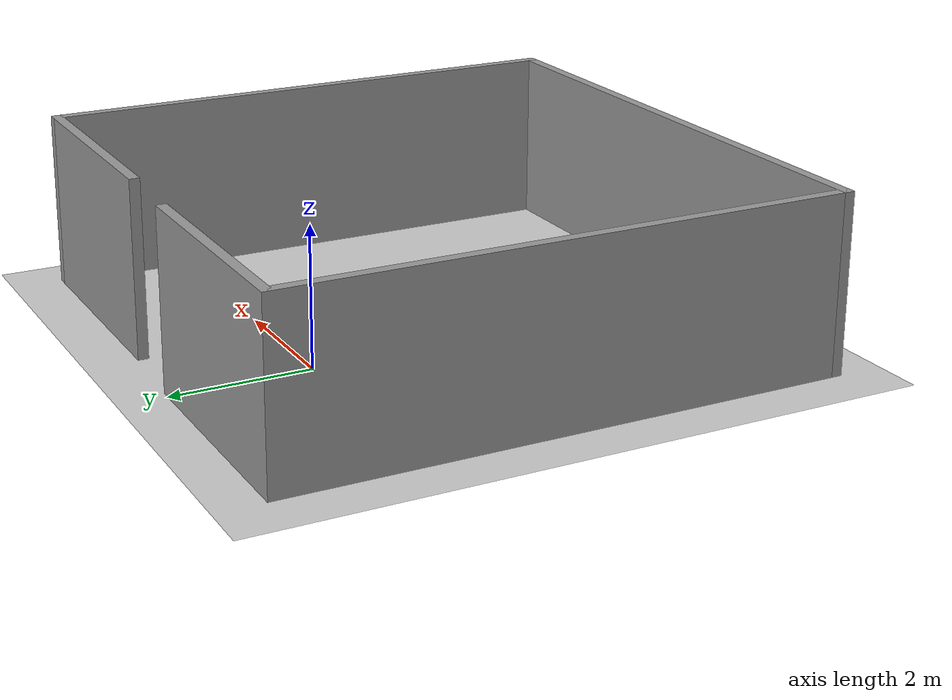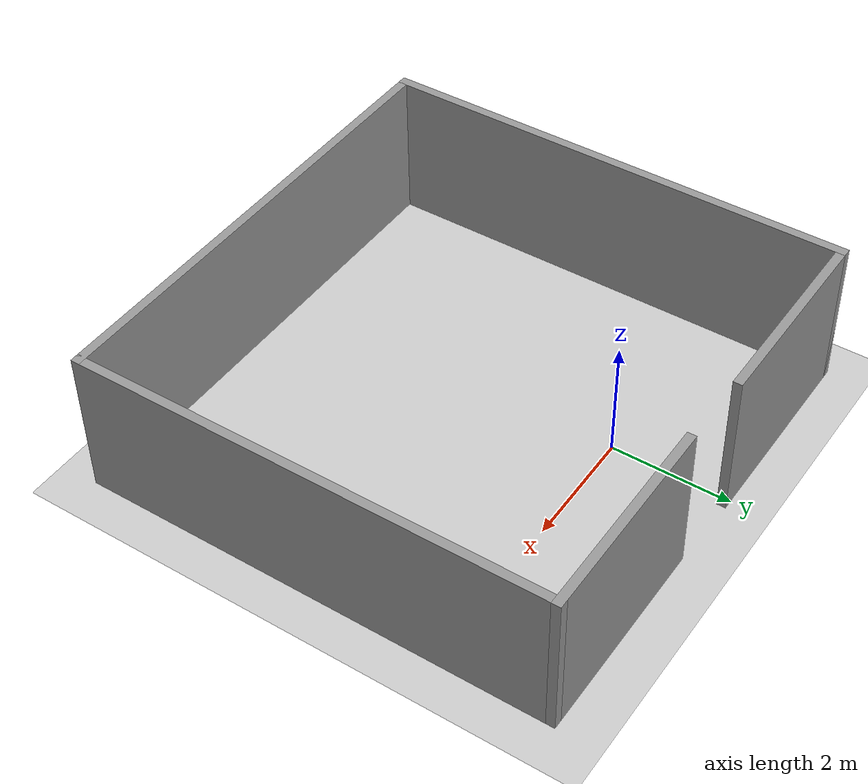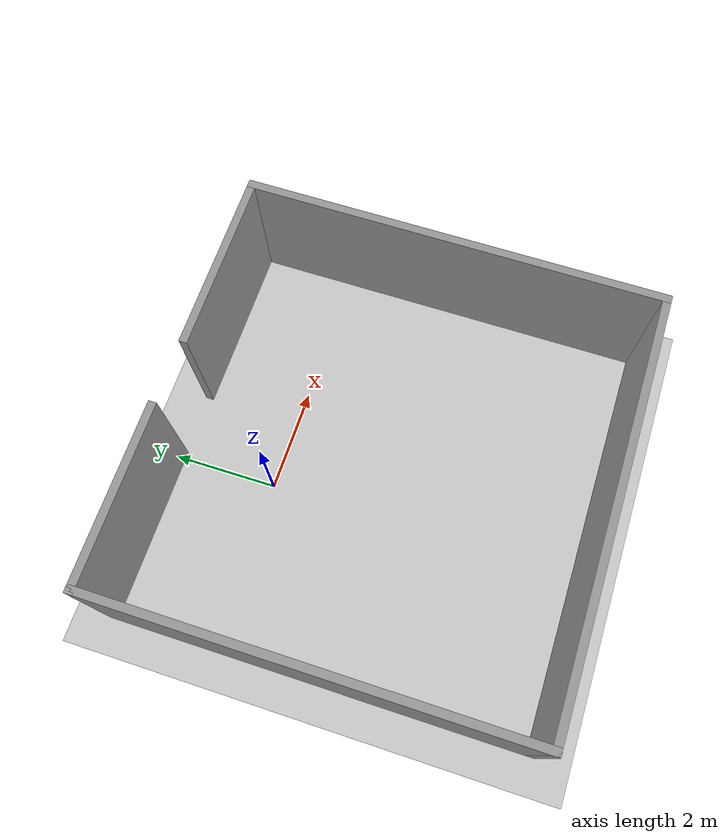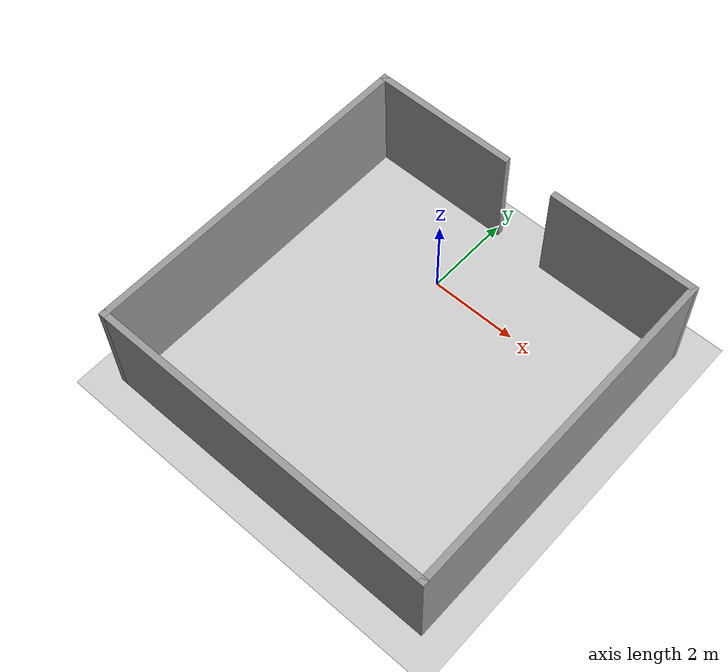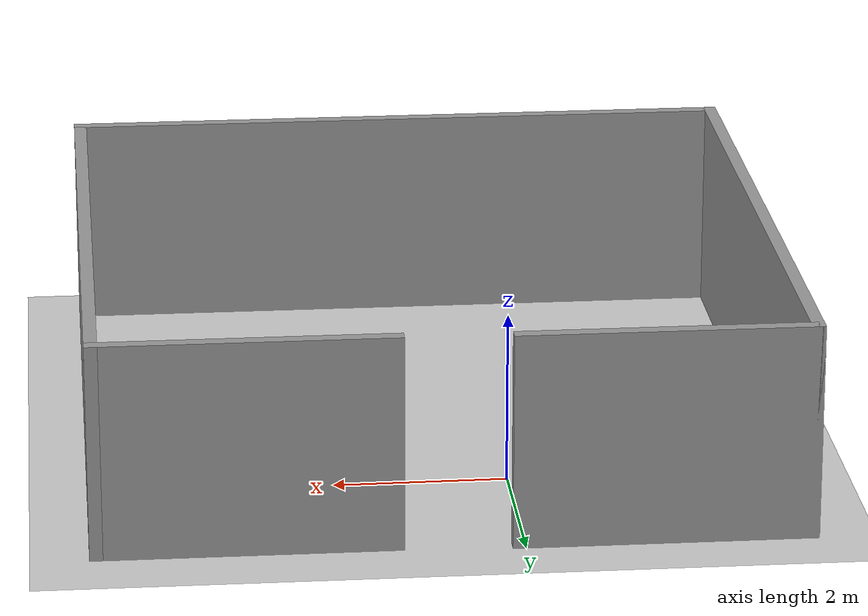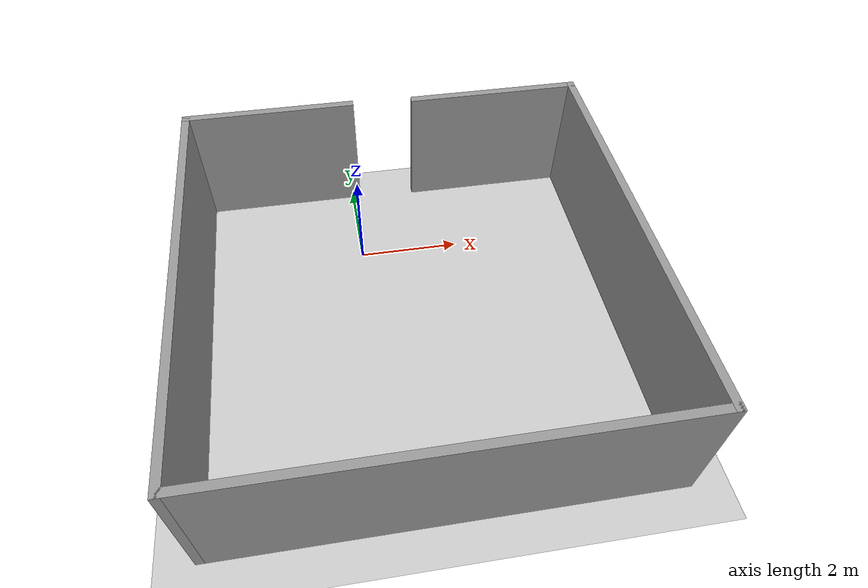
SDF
<sdf version="1.7">
 <world name="default">
  <light name="sun" type="directional">
   <pose>0 0 10 0 -0 0</pose>
   <diffuse>0.8 0.8 0.8 1</diffuse>
   <specular>0.2 0.2 0.2 1</specular>
   <attenuation>
    <range>1000</range>
    <constant>0.9</constant>
    <linear>0.01</linear>
    <quadratic>0.001</quadratic>
   </attenuation>
   <direction>-0.5 0.1 -0.9</direction>
   <spot><inner_angle>0</inner_angle><outer_angle>0</outer_angle><falloff>0</falloff></spot>
  </light>
  <model name="ground_plane">
   <static>1</static>
   <link name="link">
    <collision name="collision">
     <geometry><plane><normal>0 0 1</normal><size>100 100</size></plane></geometry>
     <surface><friction><ode><mu>100</mu><mu2>50</mu2></ode></friction></surface>
    </collision>
    <visual name="visual">
     <cast_shadows>0</cast_shadows>
     <geometry><plane><normal>0 0 1</normal><size>100 100</size></plane></geometry>
     <material>
      <script><uri>file://media/materials/scripts/gazebo.material</uri><name>Gazebo/Grey</name></script>
     </material>
    </visual>
   </link>
  </model>
  <gravity>0 0 -9.8</gravity>
  <magnetic_field>6e-06 2.3e-05 -4.2e-05</magnetic_field>
  <atmosphere type="adiabatic"/>
  <physics type="ode">
   <max_step_size>0.001</max_step_size>
   <real_time_factor>1</real_time_factor>
   <real_time_update_rate>1000</real_time_update_rate>
  </physics>
  <scene><ambient>0.4 0.4 0.4 1</ambient><background>0.7 0.7 0.7 1</background><shadows>1</shadows></scene>
  <audio><device>default</device></audio>
  <spherical_coordinates>
   <surface_model>EARTH_WGS84</surface_model>
   <latitude_deg>0</latitude_deg>
   <longitude_deg>0</longitude_deg>
   <elevation>0</elevation>
   <heading_deg>0</heading_deg>
  </spherical_coordinates>
  <model name="task3_4">
   <pose>0.767764 -2.0129 0 0 -0 0</pose>
   <link name="Wall_10">
    <collision name="Wall_10_Collision">
     <geometry><box><size>3.42 0.15 2.5</size></box></geometry>
     <pose>0 0 1.25 0 -0 0</pose>
    </collision>
    <visual name="Wall_10_Visual">
     <pose>0 0 1.25 0 -0 0</pose>
     <geometry><box><size>3.42 0.15 2.5</size></box></geometry>
     <material>
      <script><uri>file://media/materials/scripts/gazebo.material</uri><name>Gazebo/Grey</name></script>
      <ambient>1 1 1 1</ambient>
     </material>
     <meta><layer>0</layer></meta>
    </visual>
    <pose>-2.33 3.93 0 0 -0 0</pose>
   </link>
   <link name="Wall_13">
    <collision name="Wall_13_Collision">
     <geometry><box><size>7.95 0.15 2.5</size></box></geometry>
     <pose>0 0 1.25 0 -0 0</pose>
    </collision>
    <visual name="Wall_13_Visual">
     <pose>0 0 1.25 0 -0 0</pose>
     <geometry><box><size>7.95 0.15 2.5</size></box></geometry>
     <material>
      <script><uri>file://media/materials/scripts/gazebo.material</uri><name>Gazebo/Grey</name></script>
      <ambient>1 1 1 1</ambient>
     </material>
     <meta><layer>0</layer></meta>
    </visual>
    <pose>3.965 -0.03 0 0 -0 1.5708</pose>
   </link>
   <link name="Wall_15">
    <collision name="Wall_15_Collision">
     <geometry><box><size>3.47 0.15 2.5</size></box></geometry>
     <pose>0 0 1.25 0 -0 0</pose>
    </collision>
    <visual name="Wall_15_Visual">
     <pose>0 0 1.25 0 -0 0</pose>
     <geometry><box><size>3.47 0.15 2.5</size></box></geometry>
     <material>
      <script><uri>file://media/materials/scripts/gazebo.material</uri><name>Gazebo/Grey</name></script>
      <ambient>1 1 1 1</ambient>
     </material>
     <meta><layer>0</layer></meta>
    </visual>
    <pose>2.305 3.87 0 0 -0 3.14159</pose>
   </link>
   <link name="Wall_2">
    <collision name="Wall_2_Collision">
     <geometry><box><size>8.08 0.15 2.5</size></box></geometry>
     <pose>0 0 1.25 0 -0 0</pose>
    </collision>
    <visual name="Wall_2_Visual">
     <pose>0 0 1.25 0 -0 0</pose>
     <geometry><box><size>8.08 0.15 2.5</size></box></geometry>
     <material>
      <script><uri>file://media/materials/scripts/gazebo.material</uri><name>Gazebo/Grey</name></script>
      <ambient>1 1 1 1</ambient>
     </material>
     <meta><layer>0</layer></meta>
    </visual>
    <pose>0 -3.93 0 0 -0 3.14159</pose>
   </link>
   <link name="Wall_6">
    <collision name="Wall_6_Collision">
     <geometry><box><size>8.01 0.15 2.5</size></box></geometry>
     <pose>0 0 1.25 0 -0 0</pose>
    </collision>
    <visual name="Wall_6_Visual">
     <pose>0 0 1.25 0 -0 0</pose>
     <geometry><box><size>8.01 0.15 2.5</size></box></geometry>
     <material>
      <script><uri>file://media/materials/scripts/gazebo.material</uri><name>Gazebo/Grey</name></script>
      <ambient>1 1 1 1</ambient>
     </material>
     <meta><layer>0</layer></meta>
    </visual>
    <pose>-3.965 0 0 0 -0 1.5708</pose>
   </link>
   <static>1</static>
  </model>
 </world>
</sdf>
